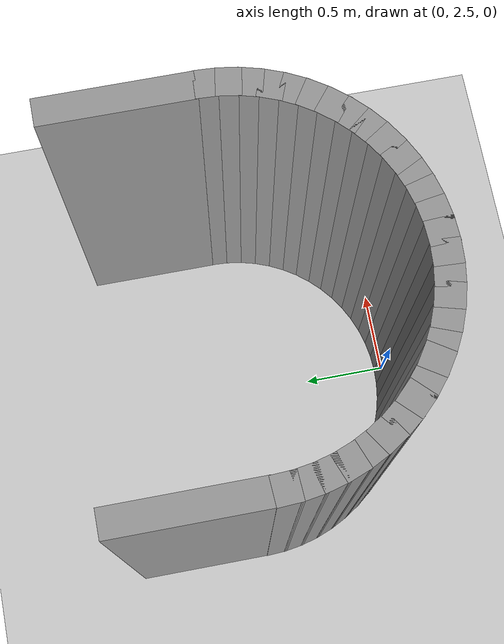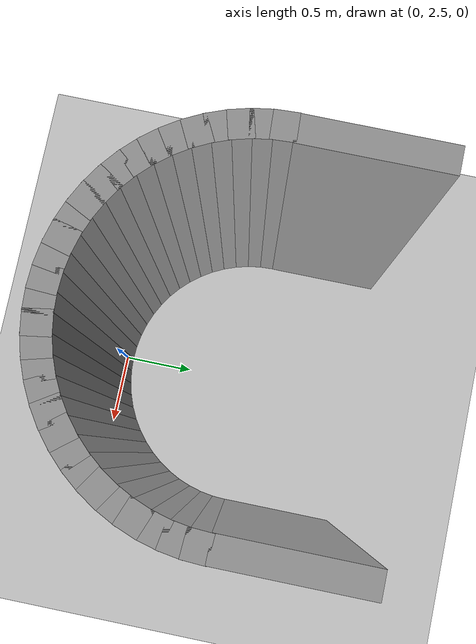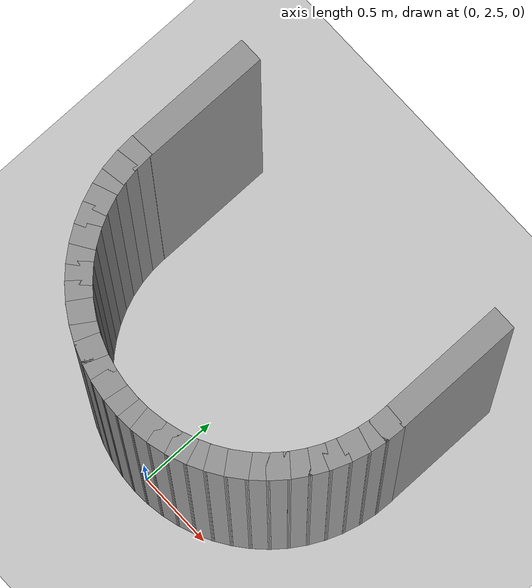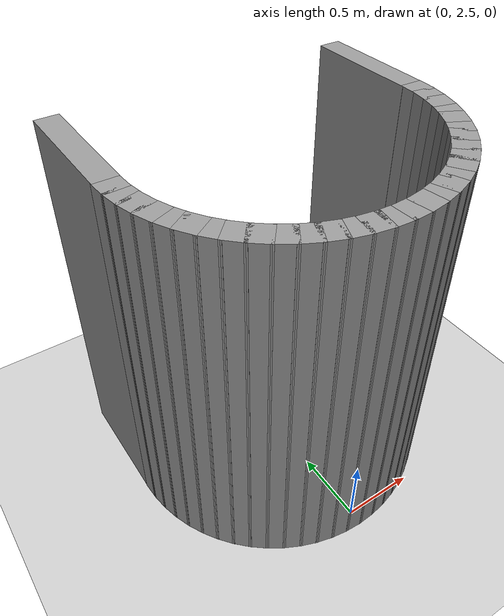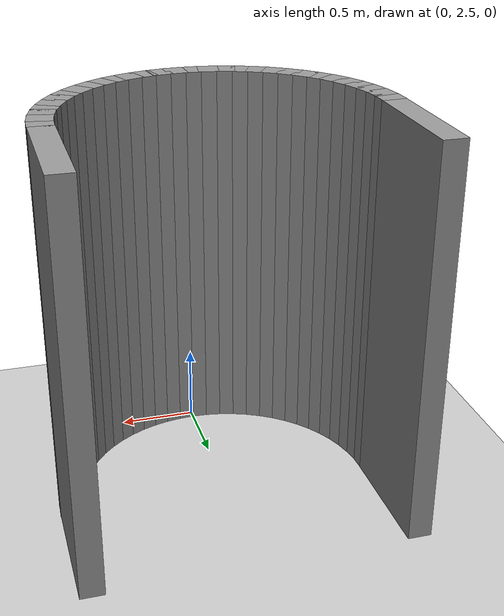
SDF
<sdf version="1.7">
 <world name="default">
  <model name="ground_plane">
   <static>1</static>
   <link name="link">
    <collision name="collision">
     <geometry><plane><normal>0 0 1</normal><size>100 100</size></plane></geometry>
     <surface>
      <contact><collide_bitmask>65535</collide_bitmask></contact>
      <friction><ode><mu>100</mu><mu2>50</mu2></ode></friction>
     </surface>
    </collision>
    <visual name="visual">
     <cast_shadows>0</cast_shadows>
     <geometry><plane><normal>0 0 1</normal><size>100 100</size></plane></geometry>
     <material>
      <script><uri>file://media/materials/scripts/gazebo.material</uri><name>Gazebo/Grey</name></script>
     </material>
    </visual>
   </link>
  </model>
  <model name="map_s_trap_goal_u">
   <link name="Goal_U_bottom_00">
    <collision name="Goal_U_bottom_00_Collision">
     <geometry><box><size>0.13084 0.15 2.5</size></box></geometry>
     <pose>0 0 1.25 0 -0 0</pose>
    </collision>
    <visual name="Goal_U_bottom_00_Visual">
     <pose>0 0 1.25 0 -0 0</pose>
     <geometry><box><size>0.13084 0.15 2.5</size></box></geometry>
     <material>
      <script><uri>file://media/materials/scripts/gazebo.material</uri><name>Gazebo/Grey</name></script>
      <ambient>1 1 1 1</ambient>
     </material>
    </visual>
    <pose>-0.998630 3.422664 0 0 -0 4.764749</pose>
   </link>
   <link name="Goal_U_bottom_01">
    <collision name="Goal_U_bottom_01_Collision">
     <geometry><box><size>0.13084 0.15 2.5</size></box></geometry>
     <pose>0 0 1.25 0 -0 0</pose>
    </collision>
    <visual name="Goal_U_bottom_01_Visual">
     <pose>0 0 1.25 0 -0 0</pose>
     <geometry><box><size>0.13084 0.15 2.5</size></box></geometry>
     <material>
      <script><uri>file://media/materials/scripts/gazebo.material</uri><name>Gazebo/Grey</name></script>
      <ambient>1 1 1 1</ambient>
     </material>
    </visual>
    <pose>-0.987688 3.318566 0 0 -0 4.869469</pose>
   </link>
   <link name="Goal_U_bottom_02">
    <collision name="Goal_U_bottom_02_Collision">
     <geometry><box><size>0.13084 0.15 2.5</size></box></geometry>
     <pose>0 0 1.25 0 -0 0</pose>
    </collision>
    <visual name="Goal_U_bottom_02_Visual">
     <pose>0 0 1.25 0 -0 0</pose>
     <geometry><box><size>0.13084 0.15 2.5</size></box></geometry>
     <material>
      <script><uri>file://media/materials/scripts/gazebo.material</uri><name>Gazebo/Grey</name></script>
      <ambient>1 1 1 1</ambient>
     </material>
    </visual>
    <pose>-0.965926 3.216181 0 0 -0 4.974188</pose>
   </link>
   <link name="Goal_U_bottom_03">
    <collision name="Goal_U_bottom_03_Collision">
     <geometry><box><size>0.13084 0.15 2.5</size></box></geometry>
     <pose>0 0 1.25 0 -0 0</pose>
    </collision>
    <visual name="Goal_U_bottom_03_Visual">
     <pose>0 0 1.25 0 -0 0</pose>
     <geometry><box><size>0.13084 0.15 2.5</size></box></geometry>
     <material>
      <script><uri>file://media/materials/scripts/gazebo.material</uri><name>Gazebo/Grey</name></script>
      <ambient>1 1 1 1</ambient>
     </material>
    </visual>
    <pose>-0.933580 3.116632 0 0 -0 5.078908</pose>
   </link>
   <link name="Goal_U_bottom_04">
    <collision name="Goal_U_bottom_04_Collision">
     <geometry><box><size>0.13084 0.15 2.5</size></box></geometry>
     <pose>0 0 1.25 0 -0 0</pose>
    </collision>
    <visual name="Goal_U_bottom_04_Visual">
     <pose>0 0 1.25 0 -0 0</pose>
     <geometry><box><size>0.13084 0.15 2.5</size></box></geometry>
     <material>
      <script><uri>file://media/materials/scripts/gazebo.material</uri><name>Gazebo/Grey</name></script>
      <ambient>1 1 1 1</ambient>
     </material>
    </visual>
    <pose>-0.891007 3.021010 0 0 -0 5.183628</pose>
   </link>
   <link name="Goal_U_bottom_05">
    <collision name="Goal_U_bottom_05_Collision">
     <geometry><box><size>0.13084 0.15 2.5</size></box></geometry>
     <pose>0 0 1.25 0 -0 0</pose>
    </collision>
    <visual name="Goal_U_bottom_05_Visual">
     <pose>0 0 1.25 0 -0 0</pose>
     <geometry><box><size>0.13084 0.15 2.5</size></box></geometry>
     <material>
      <script><uri>file://media/materials/scripts/gazebo.material</uri><name>Gazebo/Grey</name></script>
      <ambient>1 1 1 1</ambient>
     </material>
    </visual>
    <pose>-0.838671 2.930361 0 0 -0 5.288348</pose>
   </link>
   <link name="Goal_U_bottom_06">
    <collision name="Goal_U_bottom_06_Collision">
     <geometry><box><size>0.13084 0.15 2.5</size></box></geometry>
     <pose>0 0 1.25 0 -0 0</pose>
    </collision>
    <visual name="Goal_U_bottom_06_Visual">
     <pose>0 0 1.25 0 -0 0</pose>
     <geometry><box><size>0.13084 0.15 2.5</size></box></geometry>
     <material>
      <script><uri>file://media/materials/scripts/gazebo.material</uri><name>Gazebo/Grey</name></script>
      <ambient>1 1 1 1</ambient>
     </material>
    </visual>
    <pose>-0.777146 2.845680 0 0 -0 5.393067</pose>
   </link>
   <link name="Goal_U_bottom_07">
    <collision name="Goal_U_bottom_07_Collision">
     <geometry><box><size>0.13084 0.15 2.5</size></box></geometry>
     <pose>0 0 1.25 0 -0 0</pose>
    </collision>
    <visual name="Goal_U_bottom_07_Visual">
     <pose>0 0 1.25 0 -0 0</pose>
     <geometry><box><size>0.13084 0.15 2.5</size></box></geometry>
     <material>
      <script><uri>file://media/materials/scripts/gazebo.material</uri><name>Gazebo/Grey</name></script>
      <ambient>1 1 1 1</ambient>
     </material>
    </visual>
    <pose>-0.707107 2.767893 0 0 -0 5.497787</pose>
   </link>
   <link name="Goal_U_bottom_08">
    <collision name="Goal_U_bottom_08_Collision">
     <geometry><box><size>0.13084 0.15 2.5</size></box></geometry>
     <pose>0 0 1.25 0 -0 0</pose>
    </collision>
    <visual name="Goal_U_bottom_08_Visual">
     <pose>0 0 1.25 0 -0 0</pose>
     <geometry><box><size>0.13084 0.15 2.5</size></box></geometry>
     <material>
      <script><uri>file://media/materials/scripts/gazebo.material</uri><name>Gazebo/Grey</name></script>
      <ambient>1 1 1 1</ambient>
     </material>
    </visual>
    <pose>-0.629320 2.697854 0 0 -0 5.602507</pose>
   </link>
   <link name="Goal_U_bottom_09">
    <collision name="Goal_U_bottom_09_Collision">
     <geometry><box><size>0.13084 0.15 2.5</size></box></geometry>
     <pose>0 0 1.25 0 -0 0</pose>
    </collision>
    <visual name="Goal_U_bottom_09_Visual">
     <pose>0 0 1.25 0 -0 0</pose>
     <geometry><box><size>0.13084 0.15 2.5</size></box></geometry>
     <material>
      <script><uri>file://media/materials/scripts/gazebo.material</uri><name>Gazebo/Grey</name></script>
      <ambient>1 1 1 1</ambient>
     </material>
    </visual>
    <pose>-0.544639 2.636329 0 0 -0 5.707227</pose>
   </link>
   <link name="Goal_U_bottom_10">
    <collision name="Goal_U_bottom_10_Collision">
     <geometry><box><size>0.13084 0.15 2.5</size></box></geometry>
     <pose>0 0 1.25 0 -0 0</pose>
    </collision>
    <visual name="Goal_U_bottom_10_Visual">
     <pose>0 0 1.25 0 -0 0</pose>
     <geometry><box><size>0.13084 0.15 2.5</size></box></geometry>
     <material>
      <script><uri>file://media/materials/scripts/gazebo.material</uri><name>Gazebo/Grey</name></script>
      <ambient>1 1 1 1</ambient>
     </material>
    </visual>
    <pose>-0.453990 2.583993 0 0 -0 5.811946</pose>
   </link>
   <link name="Goal_U_bottom_11">
    <collision name="Goal_U_bottom_11_Collision">
     <geometry><box><size>0.13084 0.15 2.5</size></box></geometry>
     <pose>0 0 1.25 0 -0 0</pose>
    </collision>
    <visual name="Goal_U_bottom_11_Visual">
     <pose>0 0 1.25 0 -0 0</pose>
     <geometry><box><size>0.13084 0.15 2.5</size></box></geometry>
     <material>
      <script><uri>file://media/materials/scripts/gazebo.material</uri><name>Gazebo/Grey</name></script>
      <ambient>1 1 1 1</ambient>
     </material>
    </visual>
    <pose>-0.358368 2.541420 0 0 -0 5.916666</pose>
   </link>
   <link name="Goal_U_bottom_12">
    <collision name="Goal_U_bottom_12_Collision">
     <geometry><box><size>0.13084 0.15 2.5</size></box></geometry>
     <pose>0 0 1.25 0 -0 0</pose>
    </collision>
    <visual name="Goal_U_bottom_12_Visual">
     <pose>0 0 1.25 0 -0 0</pose>
     <geometry><box><size>0.13084 0.15 2.5</size></box></geometry>
     <material>
      <script><uri>file://media/materials/scripts/gazebo.material</uri><name>Gazebo/Grey</name></script>
      <ambient>1 1 1 1</ambient>
     </material>
    </visual>
    <pose>-0.258819 2.509074 0 0 -0 6.021386</pose>
   </link>
   <link name="Goal_U_bottom_13">
    <collision name="Goal_U_bottom_13_Collision">
     <geometry><box><size>0.13084 0.15 2.5</size></box></geometry>
     <pose>0 0 1.25 0 -0 0</pose>
    </collision>
    <visual name="Goal_U_bottom_13_Visual">
     <pose>0 0 1.25 0 -0 0</pose>
     <geometry><box><size>0.13084 0.15 2.5</size></box></geometry>
     <material>
      <script><uri>file://media/materials/scripts/gazebo.material</uri><name>Gazebo/Grey</name></script>
      <ambient>1 1 1 1</ambient>
     </material>
    </visual>
    <pose>-0.156434 2.487312 0 0 -0 6.126106</pose>
   </link>
   <link name="Goal_U_bottom_14">
    <collision name="Goal_U_bottom_14_Collision">
     <geometry><box><size>0.13084 0.15 2.5</size></box></geometry>
     <pose>0 0 1.25 0 -0 0</pose>
    </collision>
    <visual name="Goal_U_bottom_14_Visual">
     <pose>0 0 1.25 0 -0 0</pose>
     <geometry><box><size>0.13084 0.15 2.5</size></box></geometry>
     <material>
      <script><uri>file://media/materials/scripts/gazebo.material</uri><name>Gazebo/Grey</name></script>
      <ambient>1 1 1 1</ambient>
     </material>
    </visual>
    <pose>-0.052336 2.476370 0 0 -0 6.230825</pose>
   </link>
   <link name="Goal_U_bottom_15">
    <collision name="Goal_U_bottom_15_Collision">
     <geometry><box><size>0.13084 0.15 2.5</size></box></geometry>
     <pose>0 0 1.25 0 -0 0</pose>
    </collision>
    <visual name="Goal_U_bottom_15_Visual">
     <pose>0 0 1.25 0 -0 0</pose>
     <geometry><box><size>0.13084 0.15 2.5</size></box></geometry>
     <material>
      <script><uri>file://media/materials/scripts/gazebo.material</uri><name>Gazebo/Grey</name></script>
      <ambient>1 1 1 1</ambient>
     </material>
    </visual>
    <pose>0.052336 2.476370 0 0 -0 6.335545</pose>
   </link>
   <link name="Goal_U_bottom_16">
    <collision name="Goal_U_bottom_16_Collision">
     <geometry><box><size>0.13084 0.15 2.5</size></box></geometry>
     <pose>0 0 1.25 0 -0 0</pose>
    </collision>
    <visual name="Goal_U_bottom_16_Visual">
     <pose>0 0 1.25 0 -0 0</pose>
     <geometry><box><size>0.13084 0.15 2.5</size></box></geometry>
     <material>
      <script><uri>file://media/materials/scripts/gazebo.material</uri><name>Gazebo/Grey</name></script>
      <ambient>1 1 1 1</ambient>
     </material>
    </visual>
    <pose>0.156434 2.487312 0 0 -0 6.440265</pose>
   </link>
   <link name="Goal_U_bottom_17">
    <collision name="Goal_U_bottom_17_Collision">
     <geometry><box><size>0.13084 0.15 2.5</size></box></geometry>
     <pose>0 0 1.25 0 -0 0</pose>
    </collision>
    <visual name="Goal_U_bottom_17_Visual">
     <pose>0 0 1.25 0 -0 0</pose>
     <geometry><box><size>0.13084 0.15 2.5</size></box></geometry>
     <material>
      <script><uri>file://media/materials/scripts/gazebo.material</uri><name>Gazebo/Grey</name></script>
      <ambient>1 1 1 1</ambient>
     </material>
    </visual>
    <pose>0.258819 2.509074 0 0 -0 6.544985</pose>
   </link>
   <link name="Goal_U_bottom_18">
    <collision name="Goal_U_bottom_18_Collision">
     <geometry><box><size>0.13084 0.15 2.5</size></box></geometry>
     <pose>0 0 1.25 0 -0 0</pose>
    </collision>
    <visual name="Goal_U_bottom_18_Visual">
     <pose>0 0 1.25 0 -0 0</pose>
     <geometry><box><size>0.13084 0.15 2.5</size></box></geometry>
     <material>
      <script><uri>file://media/materials/scripts/gazebo.material</uri><name>Gazebo/Grey</name></script>
      <ambient>1 1 1 1</ambient>
     </material>
    </visual>
    <pose>0.358368 2.541420 0 0 -0 6.649704</pose>
   </link>
   <link name="Goal_U_bottom_19">
    <collision name="Goal_U_bottom_19_Collision">
     <geometry><box><size>0.13084 0.15 2.5</size></box></geometry>
     <pose>0 0 1.25 0 -0 0</pose>
    </collision>
    <visual name="Goal_U_bottom_19_Visual">
     <pose>0 0 1.25 0 -0 0</pose>
     <geometry><box><size>0.13084 0.15 2.5</size></box></geometry>
     <material>
      <script><uri>file://media/materials/scripts/gazebo.material</uri><name>Gazebo/Grey</name></script>
      <ambient>1 1 1 1</ambient>
     </material>
    </visual>
    <pose>0.453990 2.583993 0 0 -0 6.754424</pose>
   </link>
   <link name="Goal_U_bottom_20">
    <collision name="Goal_U_bottom_20_Collision">
     <geometry><box><size>0.13084 0.15 2.5</size></box></geometry>
     <pose>0 0 1.25 0 -0 0</pose>
    </collision>
    <visual name="Goal_U_bottom_20_Visual">
     <pose>0 0 1.25 0 -0 0</pose>
     <geometry><box><size>0.13084 0.15 2.5</size></box></geometry>
     <material>
      <script><uri>file://media/materials/scripts/gazebo.material</uri><name>Gazebo/Grey</name></script>
      <ambient>1 1 1 1</ambient>
     </material>
    </visual>
    <pose>0.544639 2.636329 0 0 -0 6.859144</pose>
   </link>
   <link name="Goal_U_bottom_21">
    <collision name="Goal_U_bottom_21_Collision">
     <geometry><box><size>0.13084 0.15 2.5</size></box></geometry>
     <pose>0 0 1.25 0 -0 0</pose>
    </collision>
    <visual name="Goal_U_bottom_21_Visual">
     <pose>0 0 1.25 0 -0 0</pose>
     <geometry><box><size>0.13084 0.15 2.5</size></box></geometry>
     <material>
      <script><uri>file://media/materials/scripts/gazebo.material</uri><name>Gazebo/Grey</name></script>
      <ambient>1 1 1 1</ambient>
     </material>
    </visual>
    <pose>0.629320 2.697854 0 0 -0 6.963864</pose>
   </link>
   <link name="Goal_U_bottom_22">
    <collision name="Goal_U_bottom_22_Collision">
     <geometry><box><size>0.13084 0.15 2.5</size></box></geometry>
     <pose>0 0 1.25 0 -0 0</pose>
    </collision>
    <visual name="Goal_U_bottom_22_Visual">
     <pose>0 0 1.25 0 -0 0</pose>
     <geometry><box><size>0.13084 0.15 2.5</size></box></geometry>
     <material>
      <script><uri>file://media/materials/scripts/gazebo.material</uri><name>Gazebo/Grey</name></script>
      <ambient>1 1 1 1</ambient>
     </material>
    </visual>
    <pose>0.707107 2.767893 0 0 -0 7.068583</pose>
   </link>
   <link name="Goal_U_bottom_23">
    <collision name="Goal_U_bottom_23_Collision">
     <geometry><box><size>0.13084 0.15 2.5</size></box></geometry>
     <pose>0 0 1.25 0 -0 0</pose>
    </collision>
    <visual name="Goal_U_bottom_23_Visual">
     <pose>0 0 1.25 0 -0 0</pose>
     <geometry><box><size>0.13084 0.15 2.5</size></box></geometry>
     <material>
      <script><uri>file://media/materials/scripts/gazebo.material</uri><name>Gazebo/Grey</name></script>
      <ambient>1 1 1 1</ambient>
     </material>
    </visual>
    <pose>0.777146 2.845680 0 0 -0 7.173303</pose>
   </link>
   <link name="Goal_U_bottom_24">
    <collision name="Goal_U_bottom_24_Collision">
     <geometry><box><size>0.13084 0.15 2.5</size></box></geometry>
     <pose>0 0 1.25 0 -0 0</pose>
    </collision>
    <visual name="Goal_U_bottom_24_Visual">
     <pose>0 0 1.25 0 -0 0</pose>
     <geometry><box><size>0.13084 0.15 2.5</size></box></geometry>
     <material>
      <script><uri>file://media/materials/scripts/gazebo.material</uri><name>Gazebo/Grey</name></script>
      <ambient>1 1 1 1</ambient>
     </material>
    </visual>
    <pose>0.838671 2.930361 0 0 -0 7.278023</pose>
   </link>
   <link name="Goal_U_bottom_25">
    <collision name="Goal_U_bottom_25_Collision">
     <geometry><box><size>0.13084 0.15 2.5</size></box></geometry>
     <pose>0 0 1.25 0 -0 0</pose>
    </collision>
    <visual name="Goal_U_bottom_25_Visual">
     <pose>0 0 1.25 0 -0 0</pose>
     <geometry><box><size>0.13084 0.15 2.5</size></box></geometry>
     <material>
      <script><uri>file://media/materials/scripts/gazebo.material</uri><name>Gazebo/Grey</name></script>
      <ambient>1 1 1 1</ambient>
     </material>
    </visual>
    <pose>0.891007 3.021010 0 0 -0 7.382743</pose>
   </link>
   <link name="Goal_U_bottom_26">
    <collision name="Goal_U_bottom_26_Collision">
     <geometry><box><size>0.13084 0.15 2.5</size></box></geometry>
     <pose>0 0 1.25 0 -0 0</pose>
    </collision>
    <visual name="Goal_U_bottom_26_Visual">
     <pose>0 0 1.25 0 -0 0</pose>
     <geometry><box><size>0.13084 0.15 2.5</size></box></geometry>
     <material>
      <script><uri>file://media/materials/scripts/gazebo.material</uri><name>Gazebo/Grey</name></script>
      <ambient>1 1 1 1</ambient>
     </material>
    </visual>
    <pose>0.933580 3.116632 0 0 -0 7.487462</pose>
   </link>
   <link name="Goal_U_bottom_27">
    <collision name="Goal_U_bottom_27_Collision">
     <geometry><box><size>0.13084 0.15 2.5</size></box></geometry>
     <pose>0 0 1.25 0 -0 0</pose>
    </collision>
    <visual name="Goal_U_bottom_27_Visual">
     <pose>0 0 1.25 0 -0 0</pose>
     <geometry><box><size>0.13084 0.15 2.5</size></box></geometry>
     <material>
      <script><uri>file://media/materials/scripts/gazebo.material</uri><name>Gazebo/Grey</name></script>
      <ambient>1 1 1 1</ambient>
     </material>
    </visual>
    <pose>0.965926 3.216181 0 0 -0 7.592182</pose>
   </link>
   <link name="Goal_U_bottom_28">
    <collision name="Goal_U_bottom_28_Collision">
     <geometry><box><size>0.13084 0.15 2.5</size></box></geometry>
     <pose>0 0 1.25 0 -0 0</pose>
    </collision>
    <visual name="Goal_U_bottom_28_Visual">
     <pose>0 0 1.25 0 -0 0</pose>
     <geometry><box><size>0.13084 0.15 2.5</size></box></geometry>
     <material>
      <script><uri>file://media/materials/scripts/gazebo.material</uri><name>Gazebo/Grey</name></script>
      <ambient>1 1 1 1</ambient>
     </material>
    </visual>
    <pose>0.987688 3.318566 0 0 -0 7.696902</pose>
   </link>
   <link name="Goal_U_bottom_29">
    <collision name="Goal_U_bottom_29_Collision">
     <geometry><box><size>0.13084 0.15 2.5</size></box></geometry>
     <pose>0 0 1.25 0 -0 0</pose>
    </collision>
    <visual name="Goal_U_bottom_29_Visual">
     <pose>0 0 1.25 0 -0 0</pose>
     <geometry><box><size>0.13084 0.15 2.5</size></box></geometry>
     <material>
      <script><uri>file://media/materials/scripts/gazebo.material</uri><name>Gazebo/Grey</name></script>
      <ambient>1 1 1 1</ambient>
     </material>
    </visual>
    <pose>0.998630 3.422664 0 0 -0 7.801622</pose>
   </link>
   <link name="Goal_U_left">
    <collision name="Goal_U_left_Collision">
     <geometry><box><size>0.8 0.15 2.5</size></box></geometry>
     <pose>0 0 1.25 0 -0 0</pose>
    </collision>
    <visual name="Goal_U_left_Visual">
     <pose>0 0 1.25 0 -0 0</pose>
     <geometry><box><size>0.8 0.15 2.5</size></box></geometry>
     <material>
      <script><uri>file://media/materials/scripts/gazebo.material</uri><name>Gazebo/Grey</name></script>
      <ambient>1 1 1 1</ambient>
     </material>
    </visual>
    <pose>-1.000000 3.875000 0 0 -0 1.570796</pose>
   </link>
   <link name="Goal_U_right">
    <collision name="Goal_U_right_Collision">
     <geometry><box><size>0.8 0.15 2.5</size></box></geometry>
     <pose>0 0 1.25 0 -0 0</pose>
    </collision>
    <visual name="Goal_U_right_Visual">
     <pose>0 0 1.25 0 -0 0</pose>
     <geometry><box><size>0.8 0.15 2.5</size></box></geometry>
     <material>
      <script><uri>file://media/materials/scripts/gazebo.material</uri><name>Gazebo/Grey</name></script>
      <ambient>1 1 1 1</ambient>
     </material>
    </visual>
    <pose>1.000000 3.875000 0 0 -0 1.570796</pose>
   </link>
   <static>1</static>
  </model>
 </world>
</sdf>
